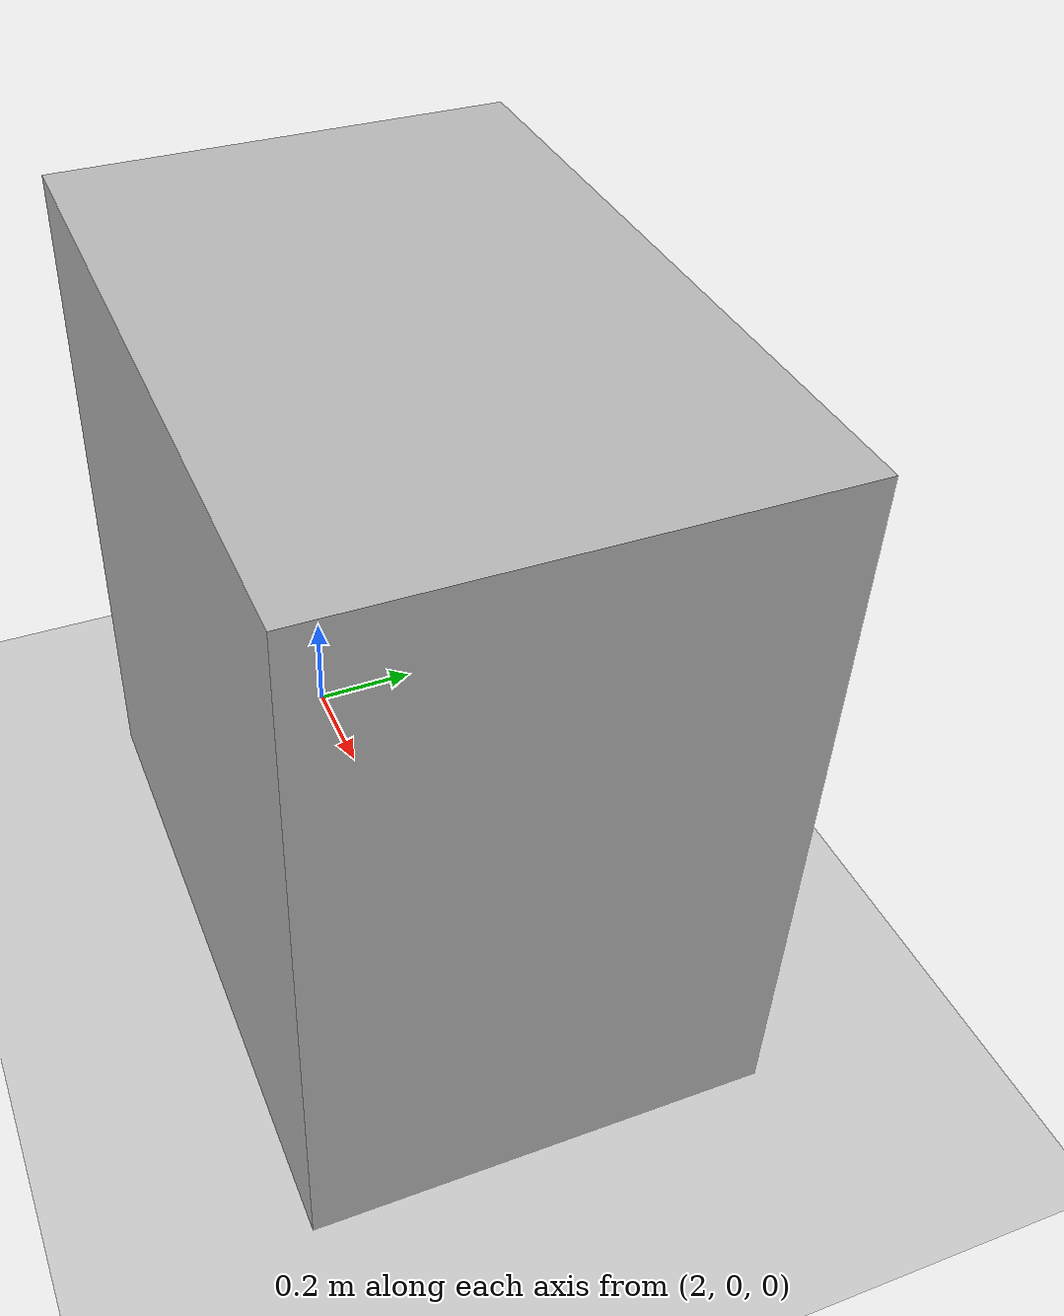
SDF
<sdf version="1.7">
 <world name="default">
  <light name="sun" type="directional">
   <pose>0 0 10 0 -0 0</pose>
   <diffuse>0.8 0.8 0.8 1</diffuse>
   <specular>0.2 0.2 0.2 1</specular>
   <attenuation>
    <range>1000</range>
    <constant>0.9</constant>
    <linear>0.01</linear>
    <quadratic>0.001</quadratic>
   </attenuation>
   <direction>-0.5 0.1 -0.9</direction>
   <spot><inner_angle>0</inner_angle><outer_angle>0</outer_angle><falloff>0</falloff></spot>
  </light>
  <model name="ground_plane">
   <static>1</static>
   <link name="link">
    <collision name="collision">
     <geometry><plane><normal>0 0 1</normal><size>100 100</size></plane></geometry>
     <surface><friction><ode><mu>100</mu><mu2>50</mu2></ode></friction></surface>
    </collision>
    <visual name="visual">
     <cast_shadows>0</cast_shadows>
     <geometry><plane><normal>0 0 1</normal><size>100 100</size></plane></geometry>
     <material>
      <script><uri>file://media/materials/scripts/gazebo.material</uri><name>Gazebo/Grey</name></script>
     </material>
    </visual>
   </link>
  </model>
  <gravity>0 0 -9.8</gravity>
  <magnetic_field>6e-06 2.3e-05 -4.2e-05</magnetic_field>
  <atmosphere type="adiabatic"/>
  <physics type="ode">
   <max_step_size>0.001</max_step_size>
   <real_time_factor>1</real_time_factor>
   <real_time_update_rate>1000</real_time_update_rate>
  </physics>
  <scene><ambient>0.4 0.4 0.4 1</ambient><background>0.7 0.7 0.7 1</background><shadows>1</shadows></scene>
  <spherical_coordinates>
   <surface_model>EARTH_WGS84</surface_model>
   <latitude_deg>0</latitude_deg>
   <longitude_deg>0</longitude_deg>
   <elevation>0</elevation>
   <heading_deg>0</heading_deg>
  </spherical_coordinates>
  <model name="big_box3">
   <pose>2.56629 -0.013852 0.625 0 -0 0</pose>
   <static>0</static>
   <link name="link">
    <inertial>
     <mass>40</mass>
     <inertia><ixx>1</ixx><ixy>0</ixy><ixz>0</ixz><iyy>1</iyy><iyz>0</iyz><izz>1</izz></inertia>
    </inertial>
    <collision name="collision">
     <geometry><box><size>1.2 0.8 1.25</size></box></geometry>
     <surface><contact><ode><max_vel>0.1</max_vel><min_depth>0.001</min_depth></ode></contact></surface>
    </collision>
    <visual name="visual">
     <geometry><mesh><uri>model://big_box3/meshes/big_box.dae</uri></mesh></geometry>
    </visual>
    <kinematic>1</kinematic>
   </link>
   <plugin name="random" filename="libRandomVelocityPlugin.so">
    <link>link</link>
    <initial_velocity>0 0 0</initial_velocity>
    <velocity_factor>1.0</velocity_factor>
    <update_period>5</update_period>
    <min_z>0</min_z>
    <max_z>0</max_z>
    <min_x>0.0</min_x>
    <max_x>0.0</max_x>
    <min_y>-0.3</min_y>
    <max_y>-0.3</max_y>
   </plugin>
  </model>
  <model name="big_box3_0">
   <pose>2.56629 -0.013852 0.625 0 -0 0</pose>
   <static>0</static>
   <link name="link">
    <inertial>
     <mass>40</mass>
     <inertia><ixx>1</ixx><ixy>0</ixy><ixz>0</ixz><iyy>1</iyy><iyz>0</iyz><izz>1</izz></inertia>
    </inertial>
    <collision name="collision">
     <geometry><box><size>1.2 0.8 1.25</size></box></geometry>
     <surface><contact><ode><max_vel>0.1</max_vel><min_depth>0.001</min_depth></ode></contact></surface>
    </collision>
    <visual name="visual">
     <geometry><mesh><uri>model://big_box3/meshes/big_box.dae</uri></mesh></geometry>
    </visual>
    <kinematic>1</kinematic>
   </link>
   <plugin name="random" filename="libRandomVelocityPlugin.so">
    <link>link</link>
    <initial_velocity>0 0 0</initial_velocity>
    <velocity_factor>1.0</velocity_factor>
    <update_period>5</update_period>
    <min_z>0</min_z>
    <max_z>0</max_z>
    <min_x>0.0</min_x>
    <max_x>0.0</max_x>
    <min_y>0.0</min_y>
    <max_y>0.0</max_y>
   </plugin>
  </model>
  <model name="big_box3_1">
   <pose>2.56629 -0.013852 0.625 0 -0 0</pose>
   <static>0</static>
   <link name="link">
    <inertial>
     <mass>40</mass>
     <inertia><ixx>1</ixx><ixy>0</ixy><ixz>0</ixz><iyy>1</iyy><iyz>0</iyz><izz>1</izz></inertia>
    </inertial>
    <collision name="collision">
     <geometry><box><size>1.2 0.8 1.25</size></box></geometry>
     <surface><contact><ode><max_vel>0.1</max_vel><min_depth>0.001</min_depth></ode></contact></surface>
    </collision>
    <visual name="visual">
     <geometry><mesh><uri>model://big_box3/meshes/big_box.dae</uri></mesh></geometry>
    </visual>
    <kinematic>1</kinematic>
   </link>
   <plugin name="random" filename="libRandomVelocityPlugin.so">
    <link>link</link>
    <initial_velocity>0 0 0</initial_velocity>
    <velocity_factor>1.0</velocity_factor>
    <update_period>5</update_period>
    <min_z>0</min_z>
    <max_z>0</max_z>
    <min_x>-0.2</min_x>
    <max_x>-0.2</max_x>
    <min_y>0.0</min_y>
    <max_y>0.0</max_y>
   </plugin>
  </model>
 </world>
</sdf>
